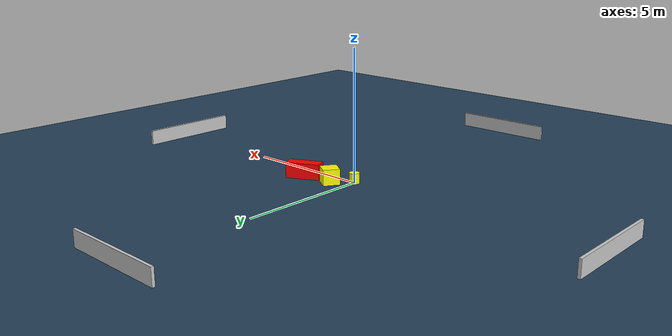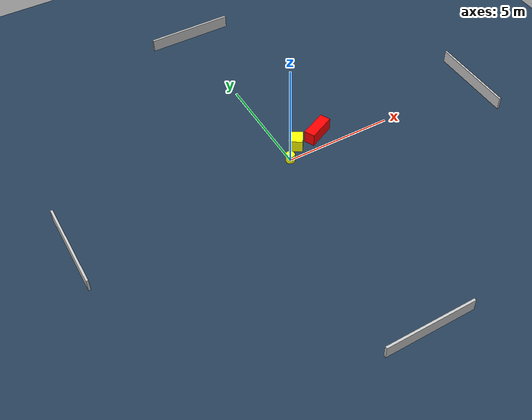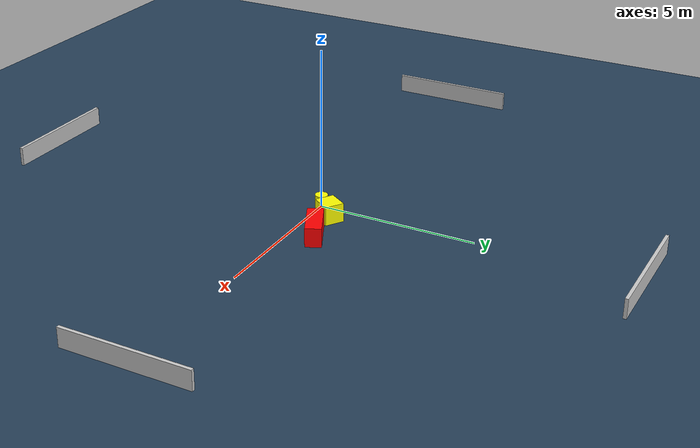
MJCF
<?xml version="1.0" ?>
<mujoco model="generated_environment">
  <option timestep="0.01" integrator="RK4" cone="elliptic"/>
  <default>
    <geom density="1"/>
  </default>
  <asset>
    <texture builtin="gradient" height="3072" name="skybox" rgb1="0.3 0.5 0.7" rgb2="0 0 0" type="skybox" width="512"/>
    <texture builtin="checker" height="300" name="groundplane" rgb1="0.2 0.3 0.4" rgb2="0.1 0.2 0.3" type="2d" width="300"/>
    <material name="groundplane" reflectance="0.2" texrepeat="5 5" texture="groundplane"/>
  </asset>
  <worldbody>
    <light dir="0 0 -1" directional="true" pos="0 0 1.5"/>
    <geom condim="3" friction="0.5 0.005 0.001" material="groundplane" name="floor" pos="0 0 0" size="0 0 0.05" type="plane"/>
    <body name="walls">
      <geom name="wall_1" condim="4" pos="-10.0 0.0 0.3" rgba="0.800000011920929 0.800000011920929 0.800000011920929 1.0" size="0.05 2.0 0.3" type="box"/>
      <geom name="wall_2" condim="4" pos="10.0 0.0 0.3" rgba="0.800000011920929 0.800000011920929 0.800000011920929 1.0" size="0.05 2.0 0.3" type="box"/>
      <geom name="wall_3" condim="4" pos="0.0 -10.0 0.3" rgba="0.800000011920929 0.800000011920929 0.800000011920929 1.0" size="2.0 0.05 0.3" type="box"/>
      <geom name="wall_4" condim="4" pos="0.0 10.0 0.3" rgba="0.800000011920929 0.800000011920929 0.800000011920929 1.0" size="2.0 0.05 0.3" type="box"/>
    </body>
    <body name="robot">
      <joint name="joint_x" type="slide" pos="0 0 0" axis="1 0 0"/>
      <joint name="joint_y" type="slide" pos="0 0 0" axis="0 1 0"/>
      <geom name="robot" type="cylinder" pos="0.0 0.0 0.2" size="0.2 0.2 0.0" mass="5.0" friction="1.0 0.005 0.0001" condim="4" rgba="1.0 1.0 0.0 1.0"/>
    </body>
    <body name="obstacle_1_movable">
      <geom name="obstacle_1_movable" condim="4" pos="0.6562304877732443 0.6225118701266348 0.3" euler="0 0 326.8355679549187" friction="0.0 0.005 0.001" rgba="1.0 1.0 0.0 1.0" size="0.30465686474195297 0.32014320371088356 0.3" type="box" mass="0.1"/>
      <joint type="free"/>
    </body>
    <body name="obstacle_2_static">
      <geom name="obstacle_2_static" condim="4" pos="1.8428016579820086 0.764054263201069 0.3" euler="0 0 25.5036586497131" friction="0.0 0.005 0.001" rgba="1.0 0.0 0.0 1.0" size="0.6570019222819119 0.24728976035119435 0.3" type="box"/>
    </body>
  </worldbody>
  <actuator>
    <motor name="actuator_x" joint="joint_x" gear="1" ctrlrange="-1 1"/>
    <motor name="actuator_y" joint="joint_y" gear="1" ctrlrange="-1 1"/>
  </actuator>
</mujoco>
